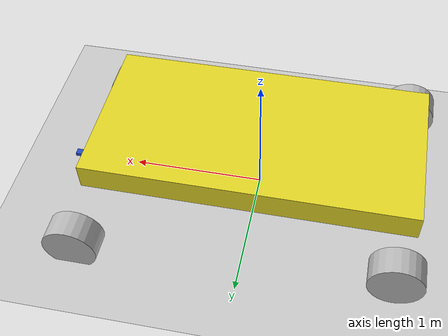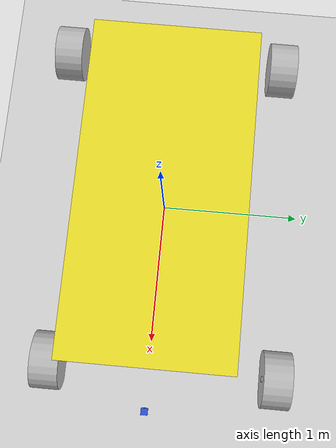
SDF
<sdf version="1.6">
 <world name="default">
  <light name="sun" type="directional">
   <pose>0 0 10 0 -0 0</pose>
   <diffuse>0.8 0.8 0.8 1</diffuse>
   <specular>0.2 0.2 0.2 1</specular>
   <attenuation>
    <range>1000</range>
    <constant>0.9</constant>
    <linear>0.01</linear>
    <quadratic>0.001</quadratic>
   </attenuation>
   <direction>-0.5 0.1 -0.9</direction>
  </light>
  <model name="ground_plane">
   <static>1</static>
   <link name="link">
    <collision name="collision">
     <geometry><plane><normal>0 0 1</normal><size>100 100</size></plane></geometry>
     <surface>
      <contact><collide_bitmask>65535</collide_bitmask></contact>
      <friction><ode><mu>100</mu><mu2>50</mu2></ode></friction>
     </surface>
    </collision>
    <visual name="visual">
     <cast_shadows>0</cast_shadows>
     <geometry><plane><normal>0 0 1</normal><size>100 100</size></plane></geometry>
     <material>
      <script><uri>file://media/materials/scripts/gazebo.material</uri><name>Gazebo/Grey</name></script>
     </material>
    </visual>
   </link>
  </model>
  <gravity>0 0 -9.8</gravity>
  <magnetic_field>6e-06 2.3e-05 -4.2e-05</magnetic_field>
  <atmosphere type="adiabatic"/>
  <physics name="default_physics" default="0" type="ode">
   <max_step_size>0.001</max_step_size>
   <real_time_factor>1</real_time_factor>
   <real_time_update_rate>1000</real_time_update_rate>
  </physics>
  <scene><ambient>0.4 0.4 0.4 1</ambient><background>0.7 0.7 0.7 1</background><shadows>1</shadows></scene>
  <audio><device>default</device></audio>
  <spherical_coordinates>
   <surface_model>EARTH_WGS84</surface_model>
   <latitude_deg>0</latitude_deg>
   <longitude_deg>0</longitude_deg>
   <elevation>0</elevation>
   <heading_deg>0</heading_deg>
  </spherical_coordinates>
  <model name="car_model">
   <link name="base_footprint">
    <inertial>
     <pose>0 0 0.497653 0 -0 0</pose>
     <mass>213</mass>
     <inertia><ixx>2.66213</ixx><ixy>0</ixy><ixz>0</ixz><iyy>160.949</iyy><iyz>0</iyz><izz>160.7</izz></inertia>
    </inertial>
    <collision name="base_footprint_fixed_joint_lump__base_link_collision">
     <pose>0 0 0.5 0 -0 0</pose>
     <geometry><box><size>2.4 1.2 0.2</size></box></geometry>
    </collision>
    <visual name="base_footprint_visual"><geometry><box><size>0.001 0.001 0.001</size></box></geometry></visual>
    <visual name="base_footprint_fixed_joint_lump__base_link_visual_1">
     <pose>0 0 0.5 0 -0 0</pose>
     <geometry><box><size>2.4 1.2 0.2</size></box></geometry>
     <material>
      <script><name>Gazebo/Yellow</name><uri>file://media/materials/scripts/gazebo.material</uri></script>
     </material>
    </visual>
    <visual name="base_footprint_fixed_joint_lump__hokuyo_link_visual_2">
     <pose>1.5 0 0 0 -0 0</pose>
     <geometry><box><size>0.05 0.05 0.05</size></box></geometry>
     <material>
      <script><name>Gazebo/Blue</name><uri>file://media/materials/scripts/gazebo.material</uri></script>
     </material>
    </visual>
    <sensor name="head_hokuyo_sensor" type="ray">
     <visualize>1</visualize>
     <update_rate>40</update_rate>
     <ray>
      <scan>
       <horizontal>
        <samples>720</samples>
        <resolution>1</resolution>
        <min_angle>-1.5708</min_angle>
        <max_angle>1.5708</max_angle>
       </horizontal>
       <vertical><samples>1</samples><min_angle>0</min_angle><max_angle>0</max_angle></vertical>
      </scan>
      <range><min>0.1</min><max>10</max><resolution>0.001</resolution></range>
     </ray>
     <plugin name="gazebo_ros_head_hokuyo_controller" filename="libgazebo_ros_laser.so">
      <topicName>/scan</topicName>
      <frameName>hokuyo_link</frameName>
      <robotNamespace>/</robotNamespace>
     </plugin>
     <pose>1.5 0 0 0 -0 0</pose>
    </sensor>
   </link>
   <link name="left_rear_wheel">
    <pose>-1.1 -0.8 0.2 0 -0 0</pose>
    <inertial>
     <mass>3</mass>
     <inertia><ixx>0.0525</ixx><ixy>0</ixy><ixz>0</ixz><iyy>0.0525</iyy><iyz>0</iyz><izz>0.06</izz></inertia>
    </inertial>
    <collision name="left_rear_wheel_collision">
     <pose>0 0 0 1.57 -0 0</pose>
     <geometry><cylinder><length>0.2</length><radius>0.2</radius></cylinder></geometry>
    </collision>
    <visual name="left_rear_wheel_visual">
     <pose>0 0 0 1.57 -0 0</pose>
     <geometry><cylinder><length>0.2</length><radius>0.2</radius></cylinder></geometry>
    </visual>
   </link>
   <joint name="left_rear_wheel_joint" type="revolute">
    <child>left_rear_wheel</child>
    <parent>base_footprint</parent>
    <axis>
     <xyz>0 1 0</xyz>
     <limit><lower>-1e+16</lower><upper>1e+16</upper></limit>
     <dynamics><spring_reference>0</spring_reference><spring_stiffness>0</spring_stiffness></dynamics>
     <use_parent_model_frame>1</use_parent_model_frame>
    </axis>
   </joint>
   <link name="left_steer">
    <pose>1.2 -0.8 0.25 0 -0 0</pose>
    <inertial>
     <mass>1</mass>
     <inertia><ixx>0.0525</ixx><ixy>0</ixy><ixz>0</ixz><iyy>0.0525</iyy><iyz>0</iyz><izz>0.06</izz></inertia>
    </inertial>
    <collision name="left_steer_collision">
     <pose>0 0 0 1.57 -0 0</pose>
     <geometry><cylinder><length>0.02</length><radius>0.02</radius></cylinder></geometry>
    </collision>
    <visual name="left_steer_visual">
     <pose>0 0 0 1.57 -0 0</pose>
     <geometry><cylinder><length>0.02</length><radius>0.02</radius></cylinder></geometry>
    </visual>
   </link>
   <joint name="left_steer_joint" type="revolute">
    <child>left_steer</child>
    <parent>base_footprint</parent>
    <axis>
     <xyz>0 0 1</xyz>
     <limit><lower>-1</lower><upper>1</upper><effort>10</effort><velocity>3</velocity></limit>
     <dynamics><spring_reference>0</spring_reference><spring_stiffness>0</spring_stiffness></dynamics>
     <use_parent_model_frame>1</use_parent_model_frame>
    </axis>
   </joint>
   <link name="left_front_wheel">
    <pose>1.2 -0.7 0.15 0 -0 0</pose>
    <inertial>
     <mass>3</mass>
     <inertia><ixx>0.0525</ixx><ixy>0</ixy><ixz>0</ixz><iyy>0.0525</iyy><iyz>0</iyz><izz>0.06</izz></inertia>
    </inertial>
    <collision name="left_front_wheel_collision">
     <pose>0 0 0 1.57 -0 0</pose>
     <geometry><cylinder><length>0.2</length><radius>0.2</radius></cylinder></geometry>
    </collision>
    <visual name="left_front_wheel_visual">
     <pose>0 0 0 1.57 -0 0</pose>
     <geometry><cylinder><length>0.2</length><radius>0.2</radius></cylinder></geometry>
    </visual>
   </link>
   <joint name="left_front_wheel_joint" type="revolute">
    <child>left_front_wheel</child>
    <parent>left_steer</parent>
    <axis>
     <xyz>0 1 0</xyz>
     <limit><lower>-1e+16</lower><upper>1e+16</upper></limit>
     <dynamics><spring_reference>0</spring_reference><spring_stiffness>0</spring_stiffness></dynamics>
     <use_parent_model_frame>1</use_parent_model_frame>
    </axis>
   </joint>
   <link name="right_rear_wheel">
    <pose>-1.1 0.8 0.2 0 -0 0</pose>
    <inertial>
     <mass>3</mass>
     <inertia><ixx>0.0525</ixx><ixy>0</ixy><ixz>0</ixz><iyy>0.0525</iyy><iyz>0</iyz><izz>0.06</izz></inertia>
    </inertial>
    <collision name="right_rear_wheel_collision">
     <pose>0 0 0 1.57 -0 0</pose>
     <geometry><cylinder><length>0.2</length><radius>0.2</radius></cylinder></geometry>
    </collision>
    <visual name="right_rear_wheel_visual">
     <pose>0 0 0 1.57 -0 0</pose>
     <geometry><cylinder><length>0.2</length><radius>0.2</radius></cylinder></geometry>
    </visual>
   </link>
   <joint name="right_rear_wheel_joint" type="revolute">
    <child>right_rear_wheel</child>
    <parent>base_footprint</parent>
    <axis>
     <xyz>0 1 0</xyz>
     <limit><lower>-1e+16</lower><upper>1e+16</upper></limit>
     <dynamics><spring_reference>0</spring_reference><spring_stiffness>0</spring_stiffness></dynamics>
     <use_parent_model_frame>1</use_parent_model_frame>
    </axis>
   </joint>
   <link name="right_steer">
    <pose>1.2 0.8 0.25 0 -0 0</pose>
    <inertial>
     <mass>1</mass>
     <inertia><ixx>0.0525</ixx><ixy>0</ixy><ixz>0</ixz><iyy>0.0525</iyy><iyz>0</iyz><izz>0.06</izz></inertia>
    </inertial>
    <collision name="right_steer_collision">
     <pose>0 0 0 1.57 -0 0</pose>
     <geometry><cylinder><length>0.02</length><radius>0.02</radius></cylinder></geometry>
    </collision>
    <visual name="right_steer_visual">
     <pose>0 0 0 1.57 -0 0</pose>
     <geometry><cylinder><length>0.02</length><radius>0.02</radius></cylinder></geometry>
    </visual>
   </link>
   <joint name="right_steer_joint" type="revolute">
    <child>right_steer</child>
    <parent>base_footprint</parent>
    <axis>
     <xyz>0 0 1</xyz>
     <limit><lower>-1</lower><upper>1</upper><effort>10</effort><velocity>3</velocity></limit>
     <dynamics><spring_reference>0</spring_reference><spring_stiffness>0</spring_stiffness></dynamics>
     <use_parent_model_frame>1</use_parent_model_frame>
    </axis>
   </joint>
   <link name="right_front_wheel">
    <pose>1.2 0.9 0.15 0 -0 0</pose>
    <inertial>
     <mass>3</mass>
     <inertia><ixx>0.0525</ixx><ixy>0</ixy><ixz>0</ixz><iyy>0.0525</iyy><iyz>0</iyz><izz>0.06</izz></inertia>
    </inertial>
    <collision name="right_front_wheel_collision">
     <pose>0 0 0 1.57 -0 0</pose>
     <geometry><cylinder><length>0.2</length><radius>0.2</radius></cylinder></geometry>
    </collision>
    <visual name="right_front_wheel_visual">
     <pose>0 0 0 1.57 -0 0</pose>
     <geometry><cylinder><length>0.2</length><radius>0.2</radius></cylinder></geometry>
    </visual>
   </link>
   <joint name="right_front_wheel_joint" type="revolute">
    <child>right_front_wheel</child>
    <parent>right_steer</parent>
    <axis>
     <xyz>0 1 0</xyz>
     <limit><lower>-1e+16</lower><upper>1e+16</upper></limit>
     <dynamics><spring_reference>0</spring_reference><spring_stiffness>0</spring_stiffness></dynamics>
     <use_parent_model_frame>1</use_parent_model_frame>
    </axis>
   </joint>
   <static>0</static>
   <plugin name="gazebo_ros_control" filename="libgazebo_ros_control.so">
    <robotNamespace>/car_model</robotNamespace>
    <robotSimType>gazebo_ros_control/DefaultRobotHWSim</robotSimType>
   </plugin>
  </model>
 </world>
</sdf>
